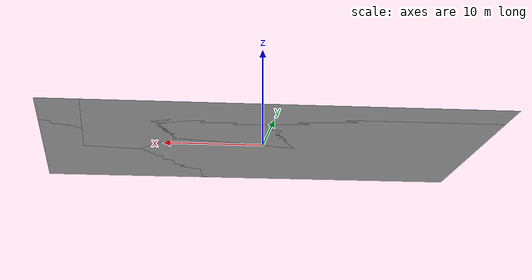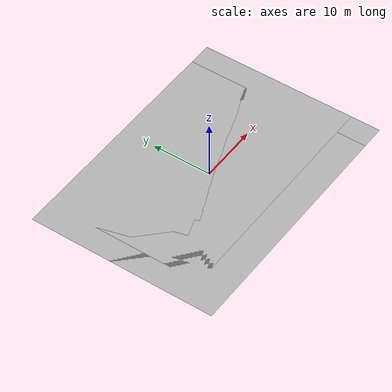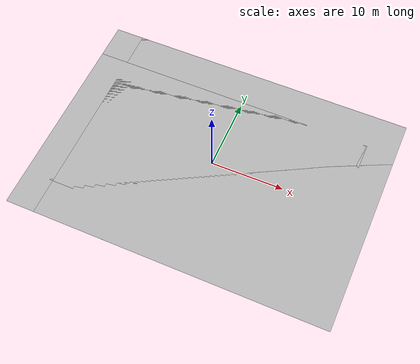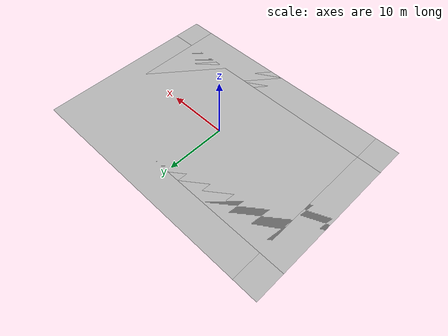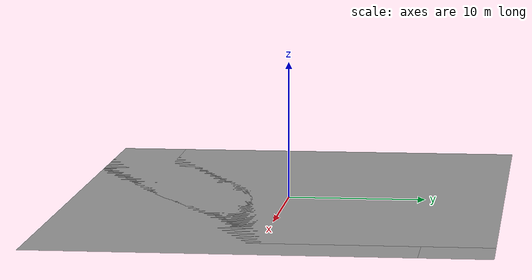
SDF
<?xml version='1.0'?>
<sdf version='1.6'>
  <model name='mud2'>
    <link name='link'>
      <self_collide>0</self_collide>
      <enable_wind>0</enable_wind>
      <kinematic>0</kinematic>
      <inertial>
        <inertia>
          <ixx>0</ixx>
          <ixy>0</ixy>
          <ixz>0</ixz>
          <iyy>0</iyy>
          <iyz>0</iyz>
          <izz>0</izz>
        </inertia>
        <mass>0</mass>
        <pose frame=''>0 0 0 0 -0 0</pose>
      </inertial>
      <pose frame=''>0 0 0 0 -0 0</pose>
      <visual name='visual_1'>
        <pose frame=''>-2 2.5 0 0 -0 0</pose>
        <cast_shadows>0</cast_shadows>
        <geometry>
          <box>
            <size>40 26.5631 0.0001</size>
          </box>
        </geometry>
        <material>
          <script>
            <uri>model://mud_box/materials/scripts</uri>
            <uri>model://mud_box/materials/textures</uri>
            <name>vrc/mud</name>
          </script>
        </material>
        <transparency>0</transparency>
      </visual>
      <visual name='visual_2'>
        <pose frame=''>2 2.5 0 0 -0 0</pose>
        <cast_shadows>0</cast_shadows>
        <geometry>
          <box>
            <size>40 26.5631 0.0001</size>
          </box>
        </geometry>
        <material>
          <script>
            <uri>model://mud_box/materials/scripts</uri>
            <uri>model://mud_box/materials/textures</uri>
            <name>vrc/mud</name>
          </script>
        </material>
        <transparency>0</transparency>
      </visual>
      <visual name='visual_3'>
        <pose frame=''>2 -2.5 0 0 -0 0</pose>
        <cast_shadows>0</cast_shadows>
        <geometry>
          <box>
            <size>40 26.5631 0.0001</size>
          </box>
        </geometry>
        <material>
          <script>
            <uri>model://mud_box/materials/scripts</uri>
            <uri>model://mud_box/materials/textures</uri>
            <name>vrc/mud</name>
          </script>
        </material>
        <transparency>0</transparency>
      </visual>
      <visual name='visual_4'>
        <pose frame=''>-2 -2.5 0 0 -0 0</pose>
        <cast_shadows>0</cast_shadows>
        <geometry>
          <box>
            <size>40 26.5631 0.0001</size>
          </box>
        </geometry>
        <material>
          <script>
            <uri>model://mud_box/materials/scripts</uri>
            <uri>model://mud_box/materials/textures</uri>
            <name>vrc/mud</name>
          </script>
        </material>
        <transparency>0</transparency>
      </visual>
      <collision name='collision'>
        <laser_retro>0</laser_retro>
        <max_contacts>10</max_contacts>
        <pose frame=''>0 0 0 0 -0 0</pose>
        <geometry>
          <box>
            <size>82.5886 53 0.0001</size>
          </box>
        </geometry>
        <surface>
          <friction>
            <ode>
              <mu>1</mu>
              <mu2>1</mu2>
              <fdir1>0 0 0</fdir1>
              <slip1>0</slip1>
              <slip2>0</slip2>
            </ode>
            <torsional>
              <coefficient>1</coefficient>
              <patch_radius>0</patch_radius>
              <surface_radius>0</surface_radius>
              <use_patch_radius>1</use_patch_radius>
              <ode>
                <slip>0</slip>
              </ode>
            </torsional>
          </friction>
          <bounce>
            <restitution_coefficient>0</restitution_coefficient>
            <threshold>1e+06</threshold>
          </bounce>
          <contact>
            <collide_without_contact>0</collide_without_contact>
            <collide_without_contact_bitmask>1</collide_without_contact_bitmask>
            <collide_bitmask>1</collide_bitmask>
            <ode>
              <soft_cfm>0</soft_cfm>
              <soft_erp>0.2</soft_erp>
              <kp>1e+13</kp>
              <kd>1</kd>
              <max_vel>0.01</max_vel>
              <min_depth>0</min_depth>
            </ode>
            <bullet>
              <split_impulse>1</split_impulse>
              <split_impulse_penetration_threshold>-0.01</split_impulse_penetration_threshold>
              <soft_cfm>0</soft_cfm>
              <soft_erp>0.2</soft_erp>
              <kp>1e+13</kp>
              <kd>1</kd>
            </bullet>
          </contact>
        </surface>
      </collision>
    </link>
    <static>1</static>
    <allow_auto_disable>1</allow_auto_disable>
  </model>
</sdf>
